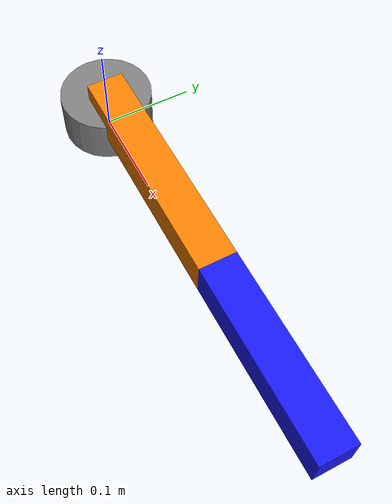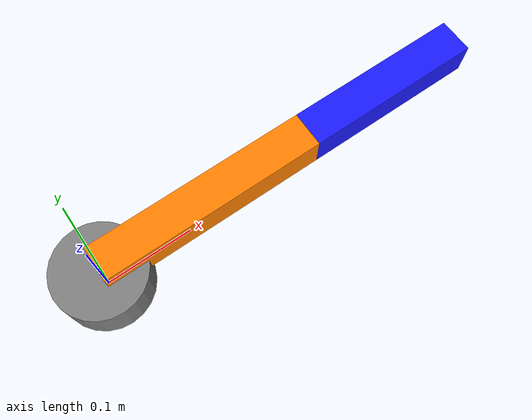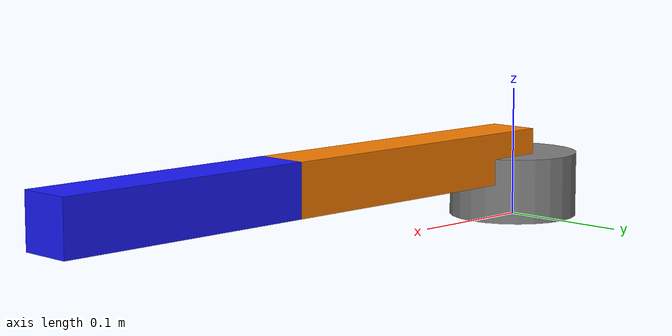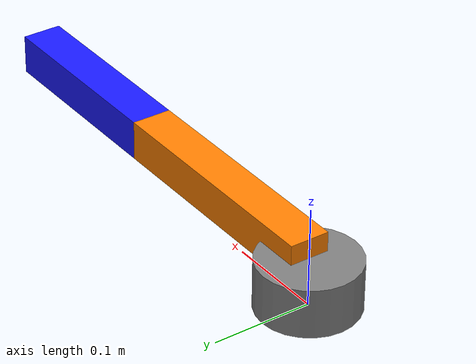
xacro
<?xml version="1.0"?>
<robot xmlns:xacro="http://www.ros.org/wiki/xacro" name="planar_2dof">

  <xacro:arg name="L1" default="0.25" />
  <xacro:arg name="L2" default="0.20" />

  <xacro:property name="L1" value="$(arg L1)" />
  <xacro:property name="L2" value="$(arg L2)" />

  <link name="base_link">
    <visual>
      <geometry>
        <cylinder length="0.05" radius="0.05"/>
      </geometry>
      <origin xyz="0 0 0.025" rpy="0 0 0"/>
      <material name="grey">
        <color rgba="0.5 0.5 0.5 1"/>
      </material>
    </visual>
  </link>

  <link name="link1">
    <visual>
      <geometry>
        <box size="${L1} 0.04 0.04"/>
      </geometry>
      <origin xyz="${L1/2} 0 0" rpy="0 0 0"/>
      <material name="orange">
        <color rgba="1.0 0.5 0.0 1.0"/>
      </material>
    </visual>
  </link>

  <joint name="joint1" type="revolute">
    <parent link="base_link"/>
    <child link="link1"/>
    <origin xyz="0 0 0.05" rpy="0 0 0"/>
    <axis xyz="0 0 1"/>
    <limit lower="-3.14159" upper="3.14159" effort="10.0" velocity="1.0"/>
  </joint>

  <link name="link2">
    <visual>
      <geometry>
        <box size="${L2} 0.04 0.04"/>
      </geometry>
      <origin xyz="${L2/2} 0 0" rpy="0 0 0"/>
      <material name="blue">
        <color rgba="0.1 0.1 1.0 1.0"/>
      </material>
    </visual>
  </link>

  <joint name="joint2" type="revolute">
    <parent link="link1"/>
    <child link="link2"/>
    <origin xyz="${L1} 0 0" rpy="0 0 0"/>
    <axis xyz="0 0 1"/>
    <limit lower="-3.14159" upper="3.14159" effort="10.0" velocity="1.0"/>
  </joint>

  <link name="ee_link"/>

  <joint name="joint2_to_ee" type="fixed">
    <parent link="link2"/>
    <child link="ee_link"/>
    <origin xyz="${L2} 0 0" rpy="0 0 0"/>
  </joint>

</robot>
